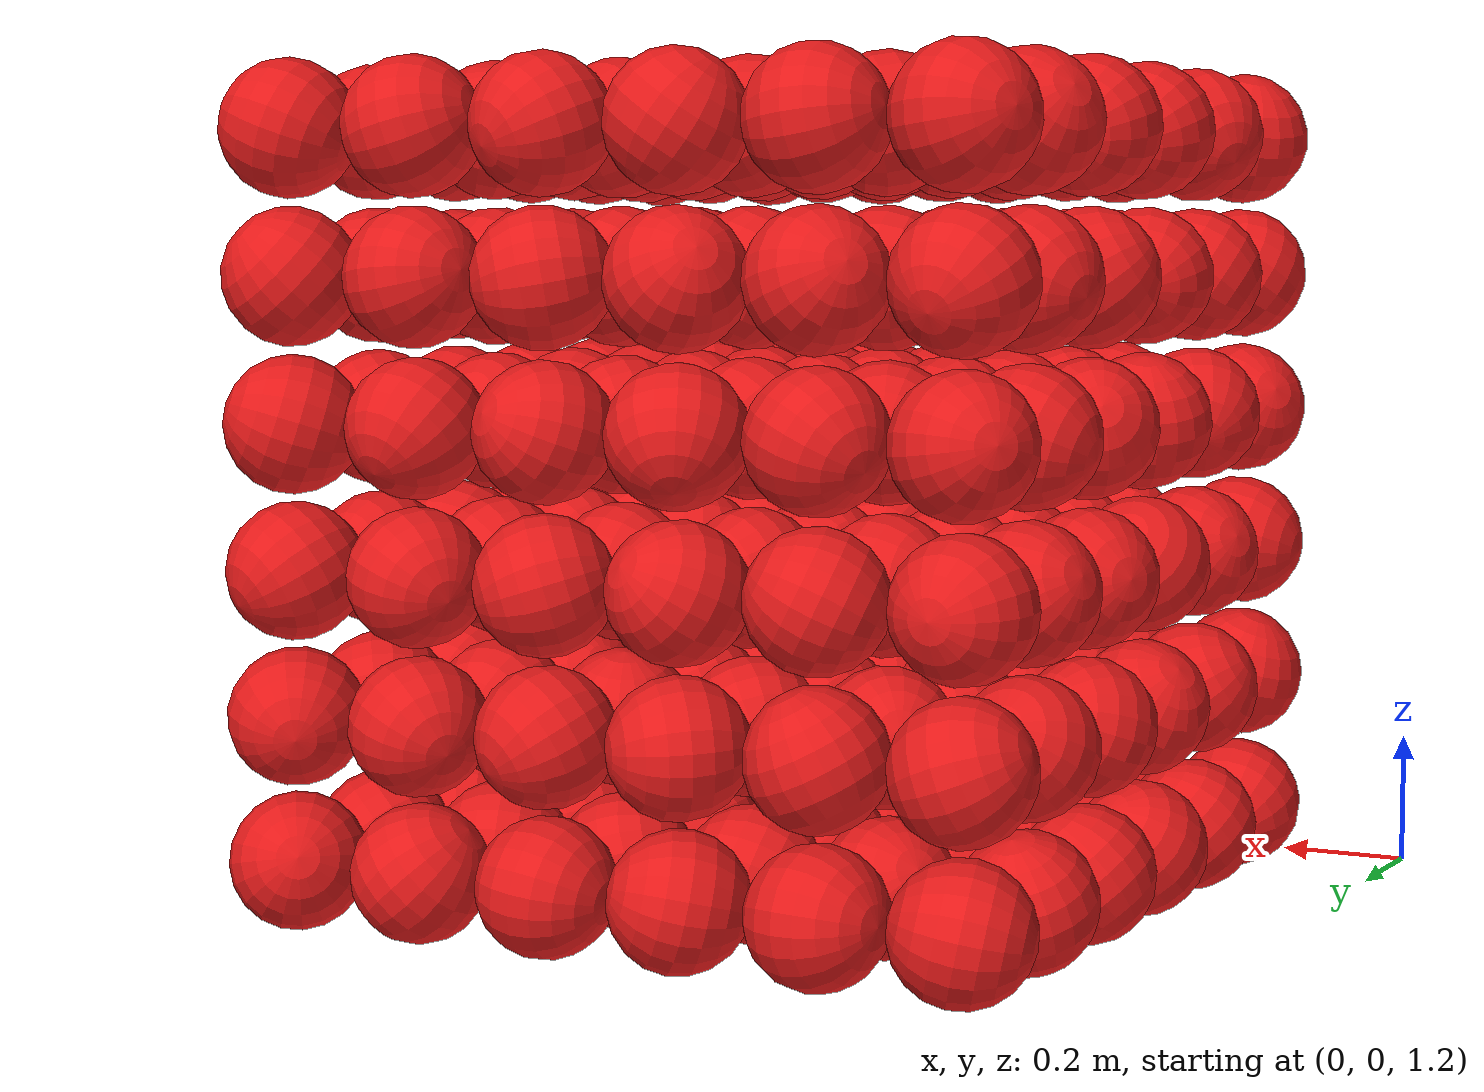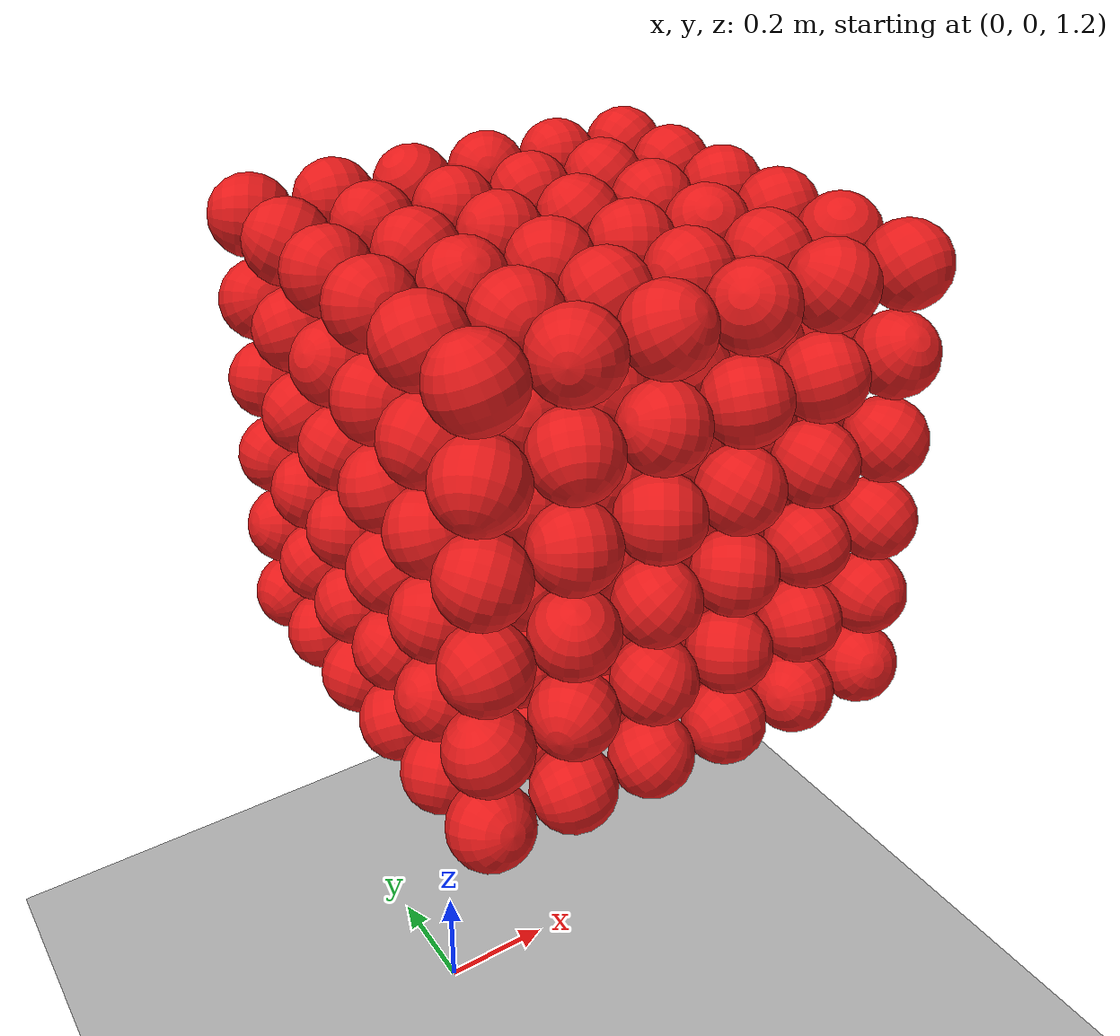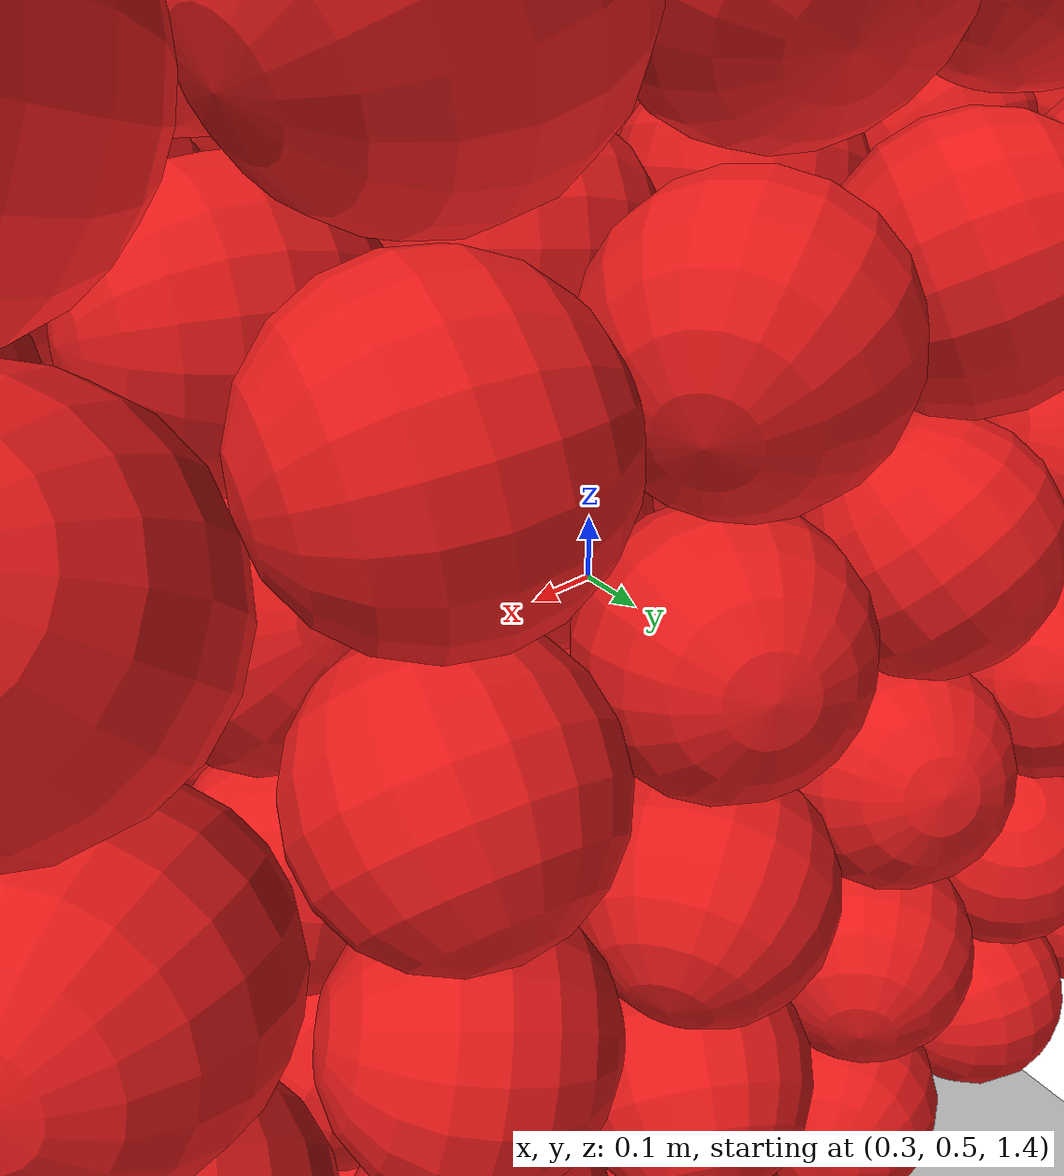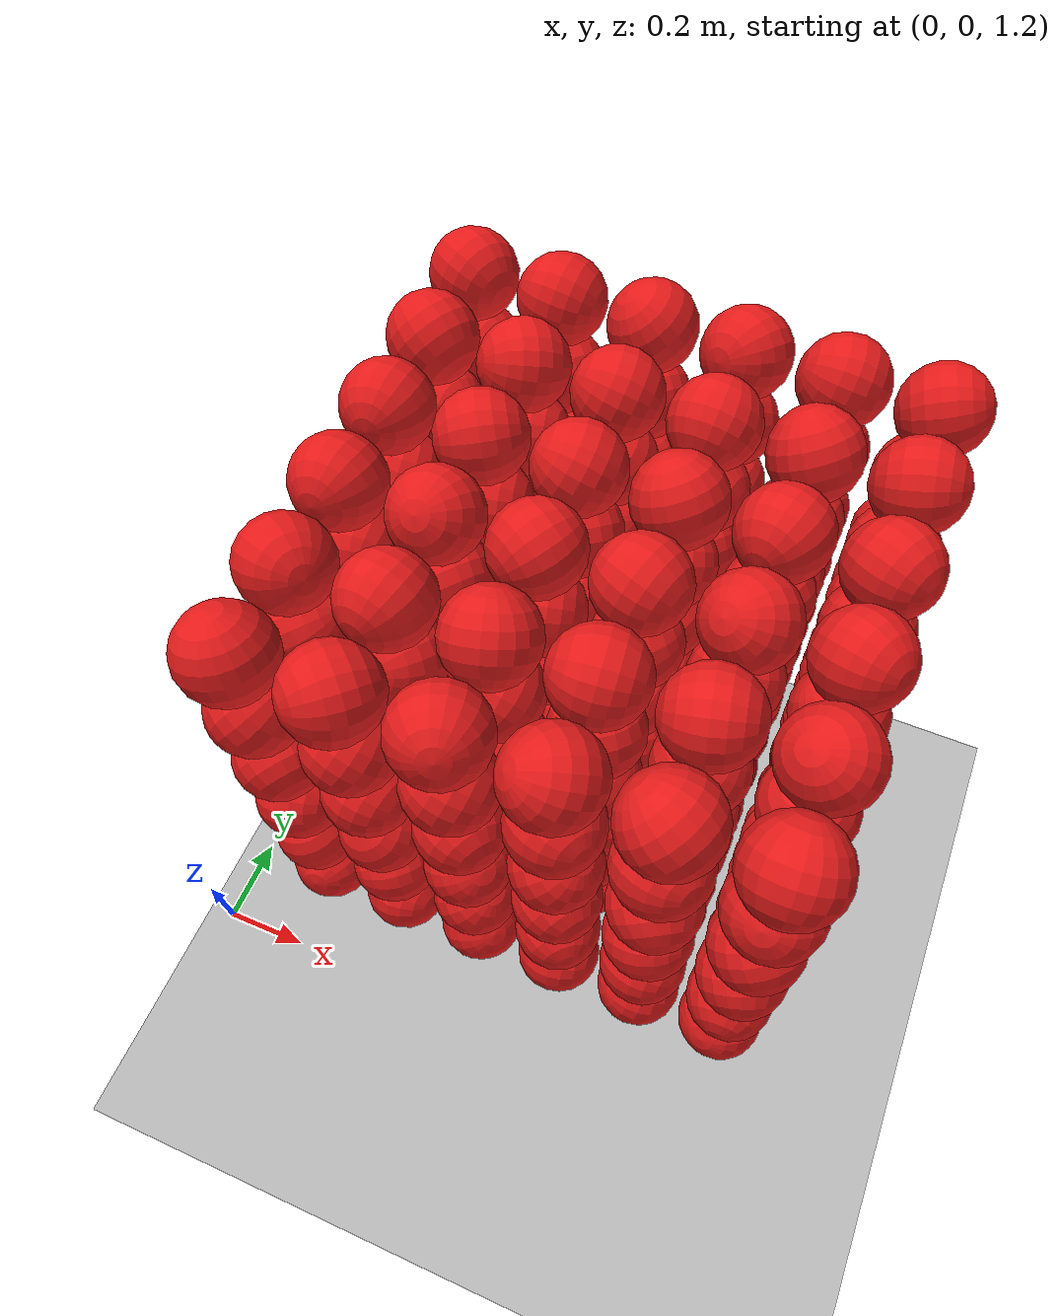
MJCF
<mujoco model="thousand">
    <compiler angle="degree"/>

    <option timestep="0.01" iterations="50" solver="PGS" jacobian="sparse" cone="elliptic" tolerance="1e-10"/>

    <size njmax="5000" nconmax="2000" nstack="1000000000"/>

    <default>
        <geom solimp=".9 .9 .01"/>

        <default class="object5">
			<geom type="sphere" material="geom" rgba=".9 .1 .1 1" size="0.100000"/>
        </default>
    </default>

    <asset>
        <texture type="skybox" builtin="gradient" width="128" height="128" rgb1=".4 .6 .8" rgb2="0 0 0"/>
        <texture name="texgeom" type="cube" builtin="flat" mark="cross" width="128" height="128"
            rgb1="0.6 0.6 0.6" rgb2="0.6 0.6 0.6" markrgb="1 1 1"/>
        <texture name="texplane" type="2d" builtin="checker" rgb1=".4 .4 .4" rgb2=".6 .6 .6"
            width="512" height="512"/>
        <material name='geom' texture="texgeom" texuniform="true"/>
        <material name='MatPlane' reflectance='0.3' texture="texplane" texrepeat="1 1" texuniform="true"/>
    </asset>

    <visual>
        <quality shadowsize="4096" offsamples="8"/>
        <map znear="0.1" force="0.05"/>
    </visual>

    <statistic extent="4"/>

    <worldbody>
        <light directional="true" diffuse=".8 .8 .8" pos="0 0 10" dir="0 0 -10"/>

        <geom pos="0 0 0" type="plane" size="200 200 5" rgba=".7 .7 .7 1" material="MatPlane"/>
		<body pos="0.210297 0.210829 1.311618" quat="0.336752 0.239192 -0.491407 0.766749"><inertial pos="0 0 0" mass="1500.000000" diaginertia="6.000000 6.000000 6.000000"/> <freejoint/> <geom class="object5"/> </body>
		<body pos="0.210005 0.210365 1.521592" quat="0.922671 -0.091206 -0.164606 0.336548"><inertial pos="0 0 0" mass="1500.000000" diaginertia="6.000000 6.000000 6.000000"/> <freejoint/> <geom class="object5"/> </body>
		<body pos="0.210764 0.210380 1.731454" quat="0.344796 0.563833 0.320866 0.678419"><inertial pos="0 0 0" mass="1500.000000" diaginertia="6.000000 6.000000 6.000000"/> <freejoint/> <geom class="object5"/> </body>
		<body pos="0.210034 0.210101 1.941042" quat="-0.583428 0.575731 0.102143 -0.563659"><inertial pos="0 0 0" mass="1500.000000" diaginertia="6.000000 6.000000 6.000000"/> <freejoint/> <geom class="object5"/> </body>
		<body pos="0.210939 0.210542 2.151830" quat="-0.477857 -0.699578 0.528736 0.051785"><inertial pos="0 0 0" mass="1500.000000" diaginertia="6.000000 6.000000 6.000000"/> <freejoint/> <geom class="object5"/> </body>
		<body pos="0.210286 0.210028 2.361153" quat="0.578210 0.038188 -0.169391 -0.797196"><inertial pos="0 0 0" mass="1500.000000" diaginertia="6.000000 6.000000 6.000000"/> <freejoint/> <geom class="object5"/> </body>
		<body pos="0.210631 0.420127 1.311581" quat="-0.684281 -0.011037 -0.356909 -0.635810"><inertial pos="0 0 0" mass="1500.000000" diaginertia="6.000000 6.000000 6.000000"/> <freejoint/> <geom class="object5"/> </body>
		<body pos="0.210105 0.420154 1.521873" quat="0.331598 -0.733652 0.458762 -0.375944"><inertial pos="0 0 0" mass="1500.000000" diaginertia="6.000000 6.000000 6.000000"/> <freejoint/> <geom class="object5"/> </body>
		<body pos="0.210886 0.420839 1.731356" quat="-0.409026 -0.765600 -0.247021 -0.430738"><inertial pos="0 0 0" mass="1500.000000" diaginertia="6.000000 6.000000 6.000000"/> <freejoint/> <geom class="object5"/> </body>
		<body pos="0.210821 0.420280 1.941851" quat="-0.800409 -0.380872 -0.404583 0.224932"><inertial pos="0 0 0" mass="1500.000000" diaginertia="6.000000 6.000000 6.000000"/> <freejoint/> <geom class="object5"/> </body>
		<body pos="0.210456 0.420038 2.151380" quat="0.079176 -0.735335 -0.488427 0.463091"><inertial pos="0 0 0" mass="1500.000000" diaginertia="6.000000 6.000000 6.000000"/> <freejoint/> <geom class="object5"/> </body>
		<body pos="0.210630 0.420809 2.361021" quat="-0.836557 -0.173402 -0.497408 0.150633"><inertial pos="0 0 0" mass="1500.000000" diaginertia="6.000000 6.000000 6.000000"/> <freejoint/> <geom class="object5"/> </body>
		<body pos="0.210823 0.630749 1.311929" quat="0.059900 0.094308 0.408256 0.906005"><inertial pos="0 0 0" mass="1500.000000" diaginertia="6.000000 6.000000 6.000000"/> <freejoint/> <geom class="object5"/> </body>
		<body pos="0.210181 0.630699 1.521189" quat="-0.468960 0.423315 0.046705 -0.773757"><inertial pos="0 0 0" mass="1500.000000" diaginertia="6.000000 6.000000 6.000000"/> <freejoint/> <geom class="object5"/> </body>
		<body pos="0.210955 0.630877 1.731872" quat="-0.011244 0.058530 -0.880240 0.470771"><inertial pos="0 0 0" mass="1500.000000" diaginertia="6.000000 6.000000 6.000000"/> <freejoint/> <geom class="object5"/> </body>
		<body pos="0.210758 0.630584 1.941370" quat="-0.022077 0.075014 -0.141502 -0.986845"><inertial pos="0 0 0" mass="1500.000000" diaginertia="6.000000 6.000000 6.000000"/> <freejoint/> <geom class="object5"/> </body>
		<body pos="0.210653 0.630675 2.151750" quat="-0.412511 0.646901 -0.425177 -0.480186"><inertial pos="0 0 0" mass="1500.000000" diaginertia="6.000000 6.000000 6.000000"/> <freejoint/> <geom class="object5"/> </body>
		<body pos="0.210270 0.630763 2.361319" quat="-0.228592 0.280524 -0.745683 -0.559472"><inertial pos="0 0 0" mass="1500.000000" diaginertia="6.000000 6.000000 6.000000"/> <freejoint/> <geom class="object5"/> </body>
		<body pos="0.210422 0.840213 1.311760" quat="0.302062 0.715909 -0.615910 -0.129951"><inertial pos="0 0 0" mass="1500.000000" diaginertia="6.000000 6.000000 6.000000"/> <freejoint/> <geom class="object5"/> </body>
		<body pos="0.210732 0.840105 1.521445" quat="-0.016145 0.332264 0.736228 -0.589329"><inertial pos="0 0 0" mass="1500.000000" diaginertia="6.000000 6.000000 6.000000"/> <freejoint/> <geom class="object5"/> </body>
		<body pos="0.210053 0.840609 1.731243" quat="0.235144 0.719926 -0.135092 0.638877"><inertial pos="0 0 0" mass="1500.000000" diaginertia="6.000000 6.000000 6.000000"/> <freejoint/> <geom class="object5"/> </body>
		<body pos="0.210808 0.840856 1.941711" quat="-0.521246 -0.449064 -0.691910 0.218872"><inertial pos="0 0 0" mass="1500.000000" diaginertia="6.000000 6.000000 6.000000"/> <freejoint/> <geom class="object5"/> </body>
		<body pos="0.210778 0.840096 2.151410" quat="0.242359 0.489928 0.028819 -0.836900"><inertial pos="0 0 0" mass="1500.000000" diaginertia="6.000000 6.000000 6.000000"/> <freejoint/> <geom class="object5"/> </body>
		<body pos="0.210441 0.840781 2.361991" quat="0.528161 -0.665365 0.403328 0.340092"><inertial pos="0 0 0" mass="1500.000000" diaginertia="6.000000 6.000000 6.000000"/> <freejoint/> <geom class="object5"/> </body>
		<body pos="0.210755 1.050201 1.311324" quat="0.198395 0.975053 -0.099263 -0.007550"><inertial pos="0 0 0" mass="1500.000000" diaginertia="6.000000 6.000000 6.000000"/> <freejoint/> <geom class="object5"/> </body>
		<body pos="0.210972 1.050763 1.521980" quat="-0.432191 -0.681123 -0.497176 0.319528"><inertial pos="0 0 0" mass="1500.000000" diaginertia="6.000000 6.000000 6.000000"/> <freejoint/> <geom class="object5"/> </body>
		<body pos="0.210777 1.050645 1.731338" quat="0.213842 -0.628234 0.508131 -0.548996"><inertial pos="0 0 0" mass="1500.000000" diaginertia="6.000000 6.000000 6.000000"/> <freejoint/> <geom class="object5"/> </body>
		<body pos="0.210947 1.050379 1.941135" quat="-0.308866 0.658079 0.463481 -0.506675"><inertial pos="0 0 0" mass="1500.000000" diaginertia="6.000000 6.000000 6.000000"/> <freejoint/> <geom class="object5"/> </body>
		<body pos="0.210174 1.050893 2.151771" quat="0.549179 -0.538511 -0.576459 0.275869"><inertial pos="0 0 0" mass="1500.000000" diaginertia="6.000000 6.000000 6.000000"/> <freejoint/> <geom class="object5"/> </body>
		<body pos="0.210111 1.050506 2.361685" quat="-0.544811 -0.201144 0.489849 0.650207"><inertial pos="0 0 0" mass="1500.000000" diaginertia="6.000000 6.000000 6.000000"/> <freejoint/> <geom class="object5"/> </body>
		<body pos="0.210161 1.260738 1.311556" quat="-0.714028 0.434658 -0.457920 0.302563"><inertial pos="0 0 0" mass="1500.000000" diaginertia="6.000000 6.000000 6.000000"/> <freejoint/> <geom class="object5"/> </body>
		<body pos="0.210236 1.260489 1.521758" quat="0.333174 -0.699080 0.424640 -0.469003"><inertial pos="0 0 0" mass="1500.000000" diaginertia="6.000000 6.000000 6.000000"/> <freejoint/> <geom class="object5"/> </body>
		<body pos="0.210119 1.260657 1.731947" quat="0.619210 -0.641821 0.340307 0.298054"><inertial pos="0 0 0" mass="1500.000000" diaginertia="6.000000 6.000000 6.000000"/> <freejoint/> <geom class="object5"/> </body>
		<body pos="0.210510 1.260435 1.941384" quat="0.719311 -0.523606 -0.438193 0.128122"><inertial pos="0 0 0" mass="1500.000000" diaginertia="6.000000 6.000000 6.000000"/> <freejoint/> <geom class="object5"/> </body>
		<body pos="0.210627 1.260450 2.151864" quat="0.643573 0.448739 0.311983 -0.535830"><inertial pos="0 0 0" mass="1500.000000" diaginertia="6.000000 6.000000 6.000000"/> <freejoint/> <geom class="object5"/> </body>
		<body pos="0.210083 1.260839 2.361351" quat="0.602693 0.115731 -0.666993 -0.422479"><inertial pos="0 0 0" mass="1500.000000" diaginertia="6.000000 6.000000 6.000000"/> <freejoint/> <geom class="object5"/> </body>
		<body pos="0.420147 0.210416 1.311878" quat="-0.527487 0.557039 0.564805 -0.304074"><inertial pos="0 0 0" mass="1500.000000" diaginertia="6.000000 6.000000 6.000000"/> <freejoint/> <geom class="object5"/> </body>
		<body pos="0.420036 0.210466 1.521584" quat="0.348674 -0.256045 -0.670949 0.602242"><inertial pos="0 0 0" mass="1500.000000" diaginertia="6.000000 6.000000 6.000000"/> <freejoint/> <geom class="object5"/> </body>
		<body pos="0.420829 0.210373 1.731765" quat="-0.232259 0.067793 0.223317 -0.944240"><inertial pos="0 0 0" mass="1500.000000" diaginertia="6.000000 6.000000 6.000000"/> <freejoint/> <geom class="object5"/> </body>
		<body pos="0.420128 0.210610 1.941614" quat="-0.377725 0.509597 -0.548193 0.545086"><inertial pos="0 0 0" mass="1500.000000" diaginertia="6.000000 6.000000 6.000000"/> <freejoint/> <geom class="object5"/> </body>
		<body pos="0.420389 0.210300 2.151753" quat="-0.411347 0.044752 -0.474293 -0.777069"><inertial pos="0 0 0" mass="1500.000000" diaginertia="6.000000 6.000000 6.000000"/> <freejoint/> <geom class="object5"/> </body>
		<body pos="0.420828 0.210116 2.361542" quat="0.158490 -0.635087 -0.427589 -0.623468"><inertial pos="0 0 0" mass="1500.000000" diaginertia="6.000000 6.000000 6.000000"/> <freejoint/> <geom class="object5"/> </body>
		<body pos="0.420753 0.420704 1.311356" quat="0.307899 -0.738986 0.582970 -0.138725"><inertial pos="0 0 0" mass="1500.000000" diaginertia="6.000000 6.000000 6.000000"/> <freejoint/> <geom class="object5"/> </body>
		<body pos="0.420102 0.420098 1.521106" quat="0.262232 -0.660584 -0.169672 0.682697"><inertial pos="0 0 0" mass="1500.000000" diaginertia="6.000000 6.000000 6.000000"/> <freejoint/> <geom class="object5"/> </body>
		<body pos="0.420329 0.420273 1.731819" quat="-0.847746 0.446400 0.219531 0.184007"><inertial pos="0 0 0" mass="1500.000000" diaginertia="6.000000 6.000000 6.000000"/> <freejoint/> <geom class="object5"/> </body>
		<body pos="0.420315 0.420146 1.941130" quat="0.660643 -0.048947 -0.517273 0.541834"><inertial pos="0 0 0" mass="1500.000000" diaginertia="6.000000 6.000000 6.000000"/> <freejoint/> <geom class="object5"/> </body>
		<body pos="0.420682 0.420161 2.151141" quat="0.406341 0.382237 0.346292 -0.754230"><inertial pos="0 0 0" mass="1500.000000" diaginertia="6.000000 6.000000 6.000000"/> <freejoint/> <geom class="object5"/> </body>
		<body pos="0.420822 0.420614 2.361932" quat="0.226321 -0.351641 -0.635580 -0.648973"><inertial pos="0 0 0" mass="1500.000000" diaginertia="6.000000 6.000000 6.000000"/> <freejoint/> <geom class="object5"/> </body>
		<body pos="0.420718 0.630243 1.311146" quat="-0.649767 0.440017 0.485459 -0.385380"><inertial pos="0 0 0" mass="1500.000000" diaginertia="6.000000 6.000000 6.000000"/> <freejoint/> <geom class="object5"/> </body>
		<body pos="0.420748 0.630282 1.521338" quat="-0.271477 -0.688835 -0.672115 -0.008215"><inertial pos="0 0 0" mass="1500.000000" diaginertia="6.000000 6.000000 6.000000"/> <freejoint/> <geom class="object5"/> </body>
		<body pos="0.420376 0.630417 1.731620" quat="0.452601 0.375049 -0.442274 0.677410"><inertial pos="0 0 0" mass="1500.000000" diaginertia="6.000000 6.000000 6.000000"/> <freejoint/> <geom class="object5"/> </body>
		<body pos="0.420696 0.630587 1.941883" quat="0.724973 0.570959 -0.284842 0.259393"><inertial pos="0 0 0" mass="1500.000000" diaginertia="6.000000 6.000000 6.000000"/> <freejoint/> <geom class="object5"/> </body>
		<body pos="0.420906 0.630685 2.151999" quat="-0.001048 -0.392945 0.334652 0.856505"><inertial pos="0 0 0" mass="1500.000000" diaginertia="6.000000 6.000000 6.000000"/> <freejoint/> <geom class="object5"/> </body>
		<body pos="0.420210 0.630416 2.361162" quat="-0.470370 -0.199765 -0.300389 0.805365"><inertial pos="0 0 0" mass="1500.000000" diaginertia="6.000000 6.000000 6.000000"/> <freejoint/> <geom class="object5"/> </body>
		<body pos="0.420453 0.840527 1.311501" quat="0.525075 0.515789 -0.646651 0.200250"><inertial pos="0 0 0" mass="1500.000000" diaginertia="6.000000 6.000000 6.000000"/> <freejoint/> <geom class="object5"/> </body>
		<body pos="0.420773 0.840285 1.521269" quat="-0.228580 -0.868547 -0.140043 -0.416852"><inertial pos="0 0 0" mass="1500.000000" diaginertia="6.000000 6.000000 6.000000"/> <freejoint/> <geom class="object5"/> </body>
		<body pos="0.420255 0.840141 1.731266" quat="-0.268171 -0.438015 -0.853597 -0.087173"><inertial pos="0 0 0" mass="1500.000000" diaginertia="6.000000 6.000000 6.000000"/> <freejoint/> <geom class="object5"/> </body>
		<body pos="0.420905 0.840657 1.941143" quat="-0.441463 0.532426 0.415646 0.590654"><inertial pos="0 0 0" mass="1500.000000" diaginertia="6.000000 6.000000 6.000000"/> <freejoint/> <geom class="object5"/> </body>
		<body pos="0.420936 0.840191 2.151527" quat="-0.577159 -0.241009 -0.684380 -0.374735"><inertial pos="0 0 0" mass="1500.000000" diaginertia="6.000000 6.000000 6.000000"/> <freejoint/> <geom class="object5"/> </body>
		<body pos="0.420164 0.840003 2.361407" quat="-0.481916 -0.705711 0.187311 0.484400"><inertial pos="0 0 0" mass="1500.000000" diaginertia="6.000000 6.000000 6.000000"/> <freejoint/> <geom class="object5"/> </body>
		<body pos="0.420721 1.050509 1.311326" quat="-0.089053 -0.400520 0.360901 0.837499"><inertial pos="0 0 0" mass="1500.000000" diaginertia="6.000000 6.000000 6.000000"/> <freejoint/> <geom class="object5"/> </body>
		<body pos="0.420292 1.050476 1.521392" quat="-0.289742 -0.159689 0.604096 0.724994"><inertial pos="0 0 0" mass="1500.000000" diaginertia="6.000000 6.000000 6.000000"/> <freejoint/> <geom class="object5"/> </body>
		<body pos="0.420004 1.050601 1.731786" quat="0.227096 -0.627944 0.345157 -0.659531"><inertial pos="0 0 0" mass="1500.000000" diaginertia="6.000000 6.000000 6.000000"/> <freejoint/> <geom class="object5"/> </body>
		<body pos="0.420585 1.050848 1.941231" quat="-0.381253 -0.579597 0.410767 -0.591594"><inertial pos="0 0 0" mass="1500.000000" diaginertia="6.000000 6.000000 6.000000"/> <freejoint/> <geom class="object5"/> </body>
		<body pos="0.420367 1.050175 2.151504" quat="-0.008085 0.735006 0.143301 -0.662696"><inertial pos="0 0 0" mass="1500.000000" diaginertia="6.000000 6.000000 6.000000"/> <freejoint/> <geom class="object5"/> </body>
		<body pos="0.420908 1.050664 2.361503" quat="0.593073 -0.390925 0.701492 0.057889"><inertial pos="0 0 0" mass="1500.000000" diaginertia="6.000000 6.000000 6.000000"/> <freejoint/> <geom class="object5"/> </body>
		<body pos="0.420093 1.260484 1.311322" quat="0.064063 0.679138 -0.196997 -0.704173"><inertial pos="0 0 0" mass="1500.000000" diaginertia="6.000000 6.000000 6.000000"/> <freejoint/> <geom class="object5"/> </body>
		<body pos="0.420740 1.260325 1.521665" quat="-0.004814 0.799444 0.555705 -0.228163"><inertial pos="0 0 0" mass="1500.000000" diaginertia="6.000000 6.000000 6.000000"/> <freejoint/> <geom class="object5"/> </body>
		<body pos="0.420514 1.260584 1.731508" quat="0.519661 0.507927 -0.679644 -0.100229"><inertial pos="0 0 0" mass="1500.000000" diaginertia="6.000000 6.000000 6.000000"/> <freejoint/> <geom class="object5"/> </body>
		<body pos="0.420519 1.260149 1.941782" quat="-0.778316 -0.011111 -0.560240 0.283252"><inertial pos="0 0 0" mass="1500.000000" diaginertia="6.000000 6.000000 6.000000"/> <freejoint/> <geom class="object5"/> </body>
		<body pos="0.420457 1.260255 2.151534" quat="-0.693907 0.104555 0.598450 0.386547"><inertial pos="0 0 0" mass="1500.000000" diaginertia="6.000000 6.000000 6.000000"/> <freejoint/> <geom class="object5"/> </body>
		<body pos="0.420539 1.260672 2.361861" quat="0.094339 0.746100 0.103099 0.651003"><inertial pos="0 0 0" mass="1500.000000" diaginertia="6.000000 6.000000 6.000000"/> <freejoint/> <geom class="object5"/> </body>
		<body pos="0.630453 0.210161 1.311237" quat="0.357477 -0.212030 0.342800 -0.842462"><inertial pos="0 0 0" mass="1500.000000" diaginertia="6.000000 6.000000 6.000000"/> <freejoint/> <geom class="object5"/> </body>
		<body pos="0.630934 0.210703 1.521676" quat="-0.202564 0.280912 -0.096641 0.933122"><inertial pos="0 0 0" mass="1500.000000" diaginertia="6.000000 6.000000 6.000000"/> <freejoint/> <geom class="object5"/> </body>
		<body pos="0.630094 0.210468 1.731694" quat="0.889319 0.264715 0.235738 0.288904"><inertial pos="0 0 0" mass="1500.000000" diaginertia="6.000000 6.000000 6.000000"/> <freejoint/> <geom class="object5"/> </body>
		<body pos="0.630152 0.210245 1.941550" quat="-0.602379 0.009463 0.701481 0.380754"><inertial pos="0 0 0" mass="1500.000000" diaginertia="6.000000 6.000000 6.000000"/> <freejoint/> <geom class="object5"/> </body>
		<body pos="0.630037 0.210208 2.151403" quat="0.778306 0.200963 -0.524220 -0.281155"><inertial pos="0 0 0" mass="1500.000000" diaginertia="6.000000 6.000000 6.000000"/> <freejoint/> <geom class="object5"/> </body>
		<body pos="0.630268 0.210385 2.361878" quat="0.211109 -0.671759 0.569874 0.423576"><inertial pos="0 0 0" mass="1500.000000" diaginertia="6.000000 6.000000 6.000000"/> <freejoint/> <geom class="object5"/> </body>
		<body pos="0.630089 0.420367 1.311940" quat="0.695128 -0.393163 -0.387054 0.460879"><inertial pos="0 0 0" mass="1500.000000" diaginertia="6.000000 6.000000 6.000000"/> <freejoint/> <geom class="object5"/> </body>
		<body pos="0.630402 0.420886 1.521452" quat="-0.016862 -0.711308 -0.662328 -0.234686"><inertial pos="0 0 0" mass="1500.000000" diaginertia="6.000000 6.000000 6.000000"/> <freejoint/> <geom class="object5"/> </body>
		<body pos="0.630718 0.420730 1.731336" quat="-0.053861 -0.184497 -0.657840 0.728221"><inertial pos="0 0 0" mass="1500.000000" diaginertia="6.000000 6.000000 6.000000"/> <freejoint/> <geom class="object5"/> </body>
		<body pos="0.630596 0.420450 1.941972" quat="0.765228 -0.048742 -0.578637 -0.277901"><inertial pos="0 0 0" mass="1500.000000" diaginertia="6.000000 6.000000 6.000000"/> <freejoint/> <geom class="object5"/> </body>
		<body pos="0.630206 0.420545 2.151958" quat="-0.465798 0.402118 0.502089 0.607651"><inertial pos="0 0 0" mass="1500.000000" diaginertia="6.000000 6.000000 6.000000"/> <freejoint/> <geom class="object5"/> </body>
		<body pos="0.630631 0.420594 2.361773" quat="-0.384627 -0.833491 -0.392508 0.057380"><inertial pos="0 0 0" mass="1500.000000" diaginertia="6.000000 6.000000 6.000000"/> <freejoint/> <geom class="object5"/> </body>
		<body pos="0.630225 0.630912 1.311113" quat="-0.530815 -0.045899 0.365604 0.763192"><inertial pos="0 0 0" mass="1500.000000" diaginertia="6.000000 6.000000 6.000000"/> <freejoint/> <geom class="object5"/> </body>
		<body pos="0.630635 0.630807 1.521572" quat="-0.015184 0.552356 -0.107990 -0.826445"><inertial pos="0 0 0" mass="1500.000000" diaginertia="6.000000 6.000000 6.000000"/> <freejoint/> <geom class="object5"/> </body>
		<body pos="0.630987 0.630749 1.731579" quat="-0.295404 0.166291 0.715462 0.610899"><inertial pos="0 0 0" mass="1500.000000" diaginertia="6.000000 6.000000 6.000000"/> <freejoint/> <geom class="object5"/> </body>
		<body pos="0.630868 0.630104 1.941787" quat="-0.167665 -0.344165 -0.844182 0.375228"><inertial pos="0 0 0" mass="1500.000000" diaginertia="6.000000 6.000000 6.000000"/> <freejoint/> <geom class="object5"/> </body>
		<body pos="0.630844 0.630050 2.151246" quat="0.586888 -0.508354 0.597081 -0.201577"><inertial pos="0 0 0" mass="1500.000000" diaginertia="6.000000 6.000000 6.000000"/> <freejoint/> <geom class="object5"/> </body>
		<body pos="0.630880 0.630276 2.361714" quat="-0.642207 -0.560145 0.512002 -0.107995"><inertial pos="0 0 0" mass="1500.000000" diaginertia="6.000000 6.000000 6.000000"/> <freejoint/> <geom class="object5"/> </body>
		<body pos="0.630563 0.840733 1.311961" quat="-0.585462 -0.505210 -0.490292 0.402008"><inertial pos="0 0 0" mass="1500.000000" diaginertia="6.000000 6.000000 6.000000"/> <freejoint/> <geom class="object5"/> </body>
		<body pos="0.630160 0.840526 1.521709" quat="0.897266 0.202061 -0.381337 0.093094"><inertial pos="0 0 0" mass="1500.000000" diaginertia="6.000000 6.000000 6.000000"/> <freejoint/> <geom class="object5"/> </body>
		<body pos="0.630541 0.840901 1.731071" quat="0.613943 0.514878 0.557138 0.218113"><inertial pos="0 0 0" mass="1500.000000" diaginertia="6.000000 6.000000 6.000000"/> <freejoint/> <geom class="object5"/> </body>
		<body pos="0.630727 0.840093 1.941135" quat="0.468930 0.521235 -0.599333 0.386288"><inertial pos="0 0 0" mass="1500.000000" diaginertia="6.000000 6.000000 6.000000"/> <freejoint/> <geom class="object5"/> </body>
		<body pos="0.630321 0.840238 2.151840" quat="-0.142185 0.289523 -0.840235 0.435850"><inertial pos="0 0 0" mass="1500.000000" diaginertia="6.000000 6.000000 6.000000"/> <freejoint/> <geom class="object5"/> </body>
		<body pos="0.630998 0.840384 2.361529" quat="0.453873 -0.539540 0.641155 -0.303012"><inertial pos="0 0 0" mass="1500.000000" diaginertia="6.000000 6.000000 6.000000"/> <freejoint/> <geom class="object5"/> </body>
		<body pos="0.630679 1.050459 1.311664" quat="0.394908 -0.556355 0.094420 -0.724984"><inertial pos="0 0 0" mass="1500.000000" diaginertia="6.000000 6.000000 6.000000"/> <freejoint/> <geom class="object5"/> </body>
		<body pos="0.630907 1.050573 1.521845" quat="0.704250 0.438756 0.080128 0.552363"><inertial pos="0 0 0" mass="1500.000000" diaginertia="6.000000 6.000000 6.000000"/> <freejoint/> <geom class="object5"/> </body>
		<body pos="0.630268 1.050941 1.731990" quat="0.658267 -0.729914 0.135606 -0.124586"><inertial pos="0 0 0" mass="1500.000000" diaginertia="6.000000 6.000000 6.000000"/> <freejoint/> <geom class="object5"/> </body>
		<body pos="0.630046 1.050925 1.941751" quat="-0.619229 0.312901 -0.300976 0.654264"><inertial pos="0 0 0" mass="1500.000000" diaginertia="6.000000 6.000000 6.000000"/> <freejoint/> <geom class="object5"/> </body>
		<body pos="0.630149 1.050597 2.151465" quat="-0.184810 0.793089 -0.573442 0.089550"><inertial pos="0 0 0" mass="1500.000000" diaginertia="6.000000 6.000000 6.000000"/> <freejoint/> <geom class="object5"/> </body>
		<body pos="0.630948 1.050653 2.361034" quat="-0.233998 0.787232 -0.235142 0.519826"><inertial pos="0 0 0" mass="1500.000000" diaginertia="6.000000 6.000000 6.000000"/> <freejoint/> <geom class="object5"/> </body>
		<body pos="0.630741 1.260230 1.311924" quat="-0.601123 0.605327 -0.163415 0.495506"><inertial pos="0 0 0" mass="1500.000000" diaginertia="6.000000 6.000000 6.000000"/> <freejoint/> <geom class="object5"/> </body>
		<body pos="0.630340 1.260891 1.521855" quat="-0.672520 0.333186 -0.640224 -0.163759"><inertial pos="0 0 0" mass="1500.000000" diaginertia="6.000000 6.000000 6.000000"/> <freejoint/> <geom class="object5"/> </body>
		<body pos="0.630550 1.260552 1.731773" quat="0.496296 0.840405 -0.074799 -0.204490"><inertial pos="0 0 0" mass="1500.000000" diaginertia="6.000000 6.000000 6.000000"/> <freejoint/> <geom class="object5"/> </body>
		<body pos="0.630944 1.260096 1.941559" quat="-0.367740 0.895704 0.239452 -0.071722"><inertial pos="0 0 0" mass="1500.000000" diaginertia="6.000000 6.000000 6.000000"/> <freejoint/> <geom class="object5"/> </body>
		<body pos="0.630879 1.260733 2.151589" quat="-0.532282 -0.637266 -0.554071 -0.059775"><inertial pos="0 0 0" mass="1500.000000" diaginertia="6.000000 6.000000 6.000000"/> <freejoint/> <geom class="object5"/> </body>
		<body pos="0.630188 1.260075 2.361329" quat="-0.479885 -0.286525 0.092290 0.824073"><inertial pos="0 0 0" mass="1500.000000" diaginertia="6.000000 6.000000 6.000000"/> <freejoint/> <geom class="object5"/> </body>
		<body pos="0.840227 0.210400 1.311991" quat="-0.055146 0.703503 -0.002265 0.708546"><inertial pos="0 0 0" mass="1500.000000" diaginertia="6.000000 6.000000 6.000000"/> <freejoint/> <geom class="object5"/> </body>
		<body pos="0.840538 0.210133 1.521339" quat="0.351449 -0.129458 0.651801 -0.659454"><inertial pos="0 0 0" mass="1500.000000" diaginertia="6.000000 6.000000 6.000000"/> <freejoint/> <geom class="object5"/> </body>
		<body pos="0.840379 0.210565 1.731757" quat="0.408818 -0.207772 0.707981 -0.537086"><inertial pos="0 0 0" mass="1500.000000" diaginertia="6.000000 6.000000 6.000000"/> <freejoint/> <geom class="object5"/> </body>
		<body pos="0.840890 0.210258 1.941414" quat="-0.916011 0.084528 -0.285825 0.268481"><inertial pos="0 0 0" mass="1500.000000" diaginertia="6.000000 6.000000 6.000000"/> <freejoint/> <geom class="object5"/> </body>
		<body pos="0.840932 0.210588 2.151261" quat="0.557819 -0.673314 -0.379478 0.302460"><inertial pos="0 0 0" mass="1500.000000" diaginertia="6.000000 6.000000 6.000000"/> <freejoint/> <geom class="object5"/> </body>
		<body pos="0.840100 0.210717 2.361240" quat="-0.190438 -0.460052 -0.761178 -0.415564"><inertial pos="0 0 0" mass="1500.000000" diaginertia="6.000000 6.000000 6.000000"/> <freejoint/> <geom class="object5"/> </body>
		<body pos="0.840633 0.420023 1.311624" quat="-0.686606 -0.235754 -0.078252 0.683277"><inertial pos="0 0 0" mass="1500.000000" diaginertia="6.000000 6.000000 6.000000"/> <freejoint/> <geom class="object5"/> </body>
		<body pos="0.840221 0.420382 1.521907" quat="-0.576848 -0.697730 0.290789 -0.309615"><inertial pos="0 0 0" mass="1500.000000" diaginertia="6.000000 6.000000 6.000000"/> <freejoint/> <geom class="object5"/> </body>
		<body pos="0.840997 0.420184 1.731555" quat="0.252918 -0.002668 -0.103718 -0.961909"><inertial pos="0 0 0" mass="1500.000000" diaginertia="6.000000 6.000000 6.000000"/> <freejoint/> <geom class="object5"/> </body>
		<body pos="0.840259 0.420722 1.941996" quat="0.108175 0.281005 0.353620 0.885600"><inertial pos="0 0 0" mass="1500.000000" diaginertia="6.000000 6.000000 6.000000"/> <freejoint/> <geom class="object5"/> </body>
		<body pos="0.840366 0.420469 2.151129" quat="-0.735727 0.077055 0.301696 0.601455"><inertial pos="0 0 0" mass="1500.000000" diaginertia="6.000000 6.000000 6.000000"/> <freejoint/> <geom class="object5"/> </body>
		<body pos="0.840598 0.420062 2.361738" quat="-0.422710 -0.506270 -0.550321 -0.512010"><inertial pos="0 0 0" mass="1500.000000" diaginertia="6.000000 6.000000 6.000000"/> <freejoint/> <geom class="object5"/> </body>
		<body pos="0.840213 0.630389 1.311288" quat="-0.596522 0.227883 -0.657863 0.399309"><inertial pos="0 0 0" mass="1500.000000" diaginertia="6.000000 6.000000 6.000000"/> <freejoint/> <geom class="object5"/> </body>
		<body pos="0.840890 0.630443 1.521408" quat="-0.159928 0.703048 0.050526 -0.691082"><inertial pos="0 0 0" mass="1500.000000" diaginertia="6.000000 6.000000 6.000000"/> <freejoint/> <geom class="object5"/> </body>
		<body pos="0.840212 0.630168 1.731355" quat="-0.301962 0.115211 -0.821910 0.469052"><inertial pos="0 0 0" mass="1500.000000" diaginertia="6.000000 6.000000 6.000000"/> <freejoint/> <geom class="object5"/> </body>
		<body pos="0.840355 0.630647 1.941425" quat="0.435008 -0.434502 -0.526664 -0.587027"><inertial pos="0 0 0" mass="1500.000000" diaginertia="6.000000 6.000000 6.000000"/> <freejoint/> <geom class="object5"/> </body>
		<body pos="0.840991 0.630975 2.151922" quat="-0.119556 -0.732105 -0.305494 0.596995"><inertial pos="0 0 0" mass="1500.000000" diaginertia="6.000000 6.000000 6.000000"/> <freejoint/> <geom class="object5"/> </body>
		<body pos="0.840901 0.630860 2.361973" quat="-0.540345 -0.584298 -0.474760 -0.375799"><inertial pos="0 0 0" mass="1500.000000" diaginertia="6.000000 6.000000 6.000000"/> <freejoint/> <geom class="object5"/> </body>
		<body pos="0.840728 0.840223 1.311597" quat="-0.638919 0.147464 -0.080410 0.750714"><inertial pos="0 0 0" mass="1500.000000" diaginertia="6.000000 6.000000 6.000000"/> <freejoint/> <geom class="object5"/> </body>
		<body pos="0.840007 0.840367 1.521163" quat="-0.718449 0.680199 -0.122268 0.078807"><inertial pos="0 0 0" mass="1500.000000" diaginertia="6.000000 6.000000 6.000000"/> <freejoint/> <geom class="object5"/> </body>
		<body pos="0.840087 0.840589 1.731408" quat="0.171660 -0.700883 -0.689262 -0.064923"><inertial pos="0 0 0" mass="1500.000000" diaginertia="6.000000 6.000000 6.000000"/> <freejoint/> <geom class="object5"/> </body>
		<body pos="0.840820 0.840699 1.941550" quat="-0.495752 0.228731 -0.753671 0.365913"><inertial pos="0 0 0" mass="1500.000000" diaginertia="6.000000 6.000000 6.000000"/> <freejoint/> <geom class="object5"/> </body>
		<body pos="0.840424 0.840516 2.151911" quat="0.424448 0.785658 0.437611 -0.105268"><inertial pos="0 0 0" mass="1500.000000" diaginertia="6.000000 6.000000 6.000000"/> <freejoint/> <geom class="object5"/> </body>
		<body pos="0.840455 0.840512 2.361234" quat="-0.161182 -0.950797 0.062503 -0.257099"><inertial pos="0 0 0" mass="1500.000000" diaginertia="6.000000 6.000000 6.000000"/> <freejoint/> <geom class="object5"/> </body>
		<body pos="0.840055 1.050364 1.311099" quat="0.312500 -0.786015 0.229231 -0.481641"><inertial pos="0 0 0" mass="1500.000000" diaginertia="6.000000 6.000000 6.000000"/> <freejoint/> <geom class="object5"/> </body>
		<body pos="0.840746 1.050782 1.521119" quat="-0.127903 -0.657307 -0.742257 0.025346"><inertial pos="0 0 0" mass="1500.000000" diaginertia="6.000000 6.000000 6.000000"/> <freejoint/> <geom class="object5"/> </body>
		<body pos="0.840185 1.050725 1.731039" quat="-0.499037 0.535734 0.506959 -0.454912"><inertial pos="0 0 0" mass="1500.000000" diaginertia="6.000000 6.000000 6.000000"/> <freejoint/> <geom class="object5"/> </body>
		<body pos="0.840488 1.050535 1.941196" quat="0.613537 -0.321779 0.668140 0.271328"><inertial pos="0 0 0" mass="1500.000000" diaginertia="6.000000 6.000000 6.000000"/> <freejoint/> <geom class="object5"/> </body>
		<body pos="0.840618 1.050549 2.151778" quat="-0.421866 -0.606256 -0.231754 -0.633066"><inertial pos="0 0 0" mass="1500.000000" diaginertia="6.000000 6.000000 6.000000"/> <freejoint/> <geom class="object5"/> </body>
		<body pos="0.840381 1.050978 2.361614" quat="0.539552 -0.357374 -0.385363 -0.657772"><inertial pos="0 0 0" mass="1500.000000" diaginertia="6.000000 6.000000 6.000000"/> <freejoint/> <geom class="object5"/> </body>
		<body pos="0.840899 1.260416 1.311680" quat="-0.587274 -0.407419 -0.513931 -0.474335"><inertial pos="0 0 0" mass="1500.000000" diaginertia="6.000000 6.000000 6.000000"/> <freejoint/> <geom class="object5"/> </body>
		<body pos="0.840189 1.260465 1.521172" quat="0.043592 0.362939 0.763784 0.531986"><inertial pos="0 0 0" mass="1500.000000" diaginertia="6.000000 6.000000 6.000000"/> <freejoint/> <geom class="object5"/> </body>
		<body pos="0.840984 1.260220 1.731173" quat="0.607281 0.573103 -0.176415 -0.521192"><inertial pos="0 0 0" mass="1500.000000" diaginertia="6.000000 6.000000 6.000000"/> <freejoint/> <geom class="object5"/> </body>
		<body pos="0.840142 1.260007 1.941808" quat="0.590667 0.754608 -0.274701 -0.078856"><inertial pos="0 0 0" mass="1500.000000" diaginertia="6.000000 6.000000 6.000000"/> <freejoint/> <geom class="object5"/> </body>
		<body pos="0.840646 1.260674 2.151976" quat="0.143174 0.540256 0.540789 0.628627"><inertial pos="0 0 0" mass="1500.000000" diaginertia="6.000000 6.000000 6.000000"/> <freejoint/> <geom class="object5"/> </body>
		<body pos="0.840268 1.260946 2.361112" quat="0.541800 -0.571858 0.583295 0.197986"><inertial pos="0 0 0" mass="1500.000000" diaginertia="6.000000 6.000000 6.000000"/> <freejoint/> <geom class="object5"/> </body>
		<body pos="1.050601 0.210468 1.311514" quat="0.124244 0.527930 0.174905 -0.821743"><inertial pos="0 0 0" mass="1500.000000" diaginertia="6.000000 6.000000 6.000000"/> <freejoint/> <geom class="object5"/> </body>
		<body pos="1.050375 0.210631 1.521515" quat="-0.592162 0.526137 0.541501 -0.281603"><inertial pos="0 0 0" mass="1500.000000" diaginertia="6.000000 6.000000 6.000000"/> <freejoint/> <geom class="object5"/> </body>
		<body pos="1.050158 0.210857 1.731317" quat="-0.400856 0.627489 0.524151 -0.413325"><inertial pos="0 0 0" mass="1500.000000" diaginertia="6.000000 6.000000 6.000000"/> <freejoint/> <geom class="object5"/> </body>
		<body pos="1.050899 0.210126 1.941857" quat="0.500793 -0.071138 -0.573560 -0.644341"><inertial pos="0 0 0" mass="1500.000000" diaginertia="6.000000 6.000000 6.000000"/> <freejoint/> <geom class="object5"/> </body>
		<body pos="1.050174 0.210727 2.151487" quat="0.011089 0.672479 -0.455639 -0.583132"><inertial pos="0 0 0" mass="1500.000000" diaginertia="6.000000 6.000000 6.000000"/> <freejoint/> <geom class="object5"/> </body>
		<body pos="1.050442 0.210222 2.361236" quat="-0.408411 -0.658035 -0.588462 -0.232171"><inertial pos="0 0 0" mass="1500.000000" diaginertia="6.000000 6.000000 6.000000"/> <freejoint/> <geom class="object5"/> </body>
		<body pos="1.050987 0.420859 1.311734" quat="0.146789 -0.427026 -0.421148 -0.786598"><inertial pos="0 0 0" mass="1500.000000" diaginertia="6.000000 6.000000 6.000000"/> <freejoint/> <geom class="object5"/> </body>
		<body pos="1.050816 0.420713 1.521775" quat="-0.388232 0.567039 0.016375 -0.726275"><inertial pos="0 0 0" mass="1500.000000" diaginertia="6.000000 6.000000 6.000000"/> <freejoint/> <geom class="object5"/> </body>
		<body pos="1.050876 0.420205 1.731292" quat="-0.353904 0.635271 -0.573628 0.377006"><inertial pos="0 0 0" mass="1500.000000" diaginertia="6.000000 6.000000 6.000000"/> <freejoint/> <geom class="object5"/> </body>
		<body pos="1.050806 0.420742 1.941792" quat="0.359588 0.506060 -0.245058 0.744678"><inertial pos="0 0 0" mass="1500.000000" diaginertia="6.000000 6.000000 6.000000"/> <freejoint/> <geom class="object5"/> </body>
		<body pos="1.050553 0.420856 2.151958" quat="0.915992 -0.246304 0.309031 0.069236"><inertial pos="0 0 0" mass="1500.000000" diaginertia="6.000000 6.000000 6.000000"/> <freejoint/> <geom class="object5"/> </body>
		<body pos="1.050608 0.420176 2.361518" quat="-0.006617 0.721715 0.151772 -0.675314"><inertial pos="0 0 0" mass="1500.000000" diaginertia="6.000000 6.000000 6.000000"/> <freejoint/> <geom class="object5"/> </body>
		<body pos="1.050130 0.630657 1.311213" quat="-0.150958 0.678124 0.457754 -0.554816"><inertial pos="0 0 0" mass="1500.000000" diaginertia="6.000000 6.000000 6.000000"/> <freejoint/> <geom class="object5"/> </body>
		<body pos="1.050773 0.630355 1.521090" quat="0.395509 0.376949 -0.729344 0.411752"><inertial pos="0 0 0" mass="1500.000000" diaginertia="6.000000 6.000000 6.000000"/> <freejoint/> <geom class="object5"/> </body>
		<body pos="1.050084 0.630892 1.731888" quat="0.116896 0.585064 -0.629457 -0.497814"><inertial pos="0 0 0" mass="1500.000000" diaginertia="6.000000 6.000000 6.000000"/> <freejoint/> <geom class="object5"/> </body>
		<body pos="1.050049 0.630692 1.941293" quat="0.477423 0.066916 -0.331466 0.810999"><inertial pos="0 0 0" mass="1500.000000" diaginertia="6.000000 6.000000 6.000000"/> <freejoint/> <geom class="object5"/> </body>
		<body pos="1.050828 0.630523 2.151123" quat="-0.593613 0.251856 0.306418 0.700214"><inertial pos="0 0 0" mass="1500.000000" diaginertia="6.000000 6.000000 6.000000"/> <freejoint/> <geom class="object5"/> </body>
		<body pos="1.050962 0.630402 2.361187" quat="-0.256512 0.892829 0.220750 0.297199"><inertial pos="0 0 0" mass="1500.000000" diaginertia="6.000000 6.000000 6.000000"/> <freejoint/> <geom class="object5"/> </body>
		<body pos="1.050961 0.840240 1.311318" quat="-0.289970 0.566947 0.418480 0.647582"><inertial pos="0 0 0" mass="1500.000000" diaginertia="6.000000 6.000000 6.000000"/> <freejoint/> <geom class="object5"/> </body>
		<body pos="1.050173 0.840805 1.521364" quat="0.174438 -0.596498 0.616488 -0.483429"><inertial pos="0 0 0" mass="1500.000000" diaginertia="6.000000 6.000000 6.000000"/> <freejoint/> <geom class="object5"/> </body>
		<body pos="1.050677 0.840834 1.731043" quat="0.652636 -0.517144 -0.510583 0.214322"><inertial pos="0 0 0" mass="1500.000000" diaginertia="6.000000 6.000000 6.000000"/> <freejoint/> <geom class="object5"/> </body>
		<body pos="1.050330 0.840978 1.941663" quat="0.515746 -0.441530 -0.491325 0.545579"><inertial pos="0 0 0" mass="1500.000000" diaginertia="6.000000 6.000000 6.000000"/> <freejoint/> <geom class="object5"/> </body>
		<body pos="1.050735 0.840023 2.151108" quat="-0.563423 -0.313072 0.520556 -0.559965"><inertial pos="0 0 0" mass="1500.000000" diaginertia="6.000000 6.000000 6.000000"/> <freejoint/> <geom class="object5"/> </body>
		<body pos="1.050574 0.840922 2.361978" quat="0.632668 -0.702954 -0.136958 -0.294668"><inertial pos="0 0 0" mass="1500.000000" diaginertia="6.000000 6.000000 6.000000"/> <freejoint/> <geom class="object5"/> </body>
		<body pos="1.050423 1.050915 1.311285" quat="0.134985 0.552083 0.393748 0.722458"><inertial pos="0 0 0" mass="1500.000000" diaginertia="6.000000 6.000000 6.000000"/> <freejoint/> <geom class="object5"/> </body>
		<body pos="1.050055 1.050860 1.521008" quat="0.377089 0.364994 -0.561529 0.639741"><inertial pos="0 0 0" mass="1500.000000" diaginertia="6.000000 6.000000 6.000000"/> <freejoint/> <geom class="object5"/> </body>
		<body pos="1.050157 1.050912 1.731234" quat="0.400648 0.301249 -0.737315 -0.452877"><inertial pos="0 0 0" mass="1500.000000" diaginertia="6.000000 6.000000 6.000000"/> <freejoint/> <geom class="object5"/> </body>
		<body pos="1.050199 1.050932 1.941541" quat="0.726922 -0.453819 0.232956 0.459743"><inertial pos="0 0 0" mass="1500.000000" diaginertia="6.000000 6.000000 6.000000"/> <freejoint/> <geom class="object5"/> </body>
		<body pos="1.050400 1.050837 2.151163" quat="-0.664894 -0.349652 -0.562216 -0.345793"><inertial pos="0 0 0" mass="1500.000000" diaginertia="6.000000 6.000000 6.000000"/> <freejoint/> <geom class="object5"/> </body>
		<body pos="1.050986 1.050624 2.361596" quat="0.251555 -0.315586 0.147910 0.902911"><inertial pos="0 0 0" mass="1500.000000" diaginertia="6.000000 6.000000 6.000000"/> <freejoint/> <geom class="object5"/> </body>
		<body pos="1.050470 1.260088 1.311934" quat="-0.680228 0.221619 0.347301 -0.606265"><inertial pos="0 0 0" mass="1500.000000" diaginertia="6.000000 6.000000 6.000000"/> <freejoint/> <geom class="object5"/> </body>
		<body pos="1.050786 1.260925 1.521564" quat="-0.074498 0.477959 -0.352069 0.801281"><inertial pos="0 0 0" mass="1500.000000" diaginertia="6.000000 6.000000 6.000000"/> <freejoint/> <geom class="object5"/> </body>
		<body pos="1.050986 1.260536 1.731894" quat="-0.515348 -0.041886 0.794253 0.319100"><inertial pos="0 0 0" mass="1500.000000" diaginertia="6.000000 6.000000 6.000000"/> <freejoint/> <geom class="object5"/> </body>
		<body pos="1.050436 1.260854 1.941396" quat="-0.075706 -0.120572 -0.424443 0.894192"><inertial pos="0 0 0" mass="1500.000000" diaginertia="6.000000 6.000000 6.000000"/> <freejoint/> <geom class="object5"/> </body>
		<body pos="1.050883 1.260343 2.151954" quat="-0.258479 0.586199 -0.459302 0.615305"><inertial pos="0 0 0" mass="1500.000000" diaginertia="6.000000 6.000000 6.000000"/> <freejoint/> <geom class="object5"/> </body>
		<body pos="1.050879 1.260507 2.361018" quat="0.588907 -0.297556 0.737946 -0.141721"><inertial pos="0 0 0" mass="1500.000000" diaginertia="6.000000 6.000000 6.000000"/> <freejoint/> <geom class="object5"/> </body>
		<body pos="1.260606 0.210378 1.311721" quat="-0.279043 0.682101 0.530903 0.418349"><inertial pos="0 0 0" mass="1500.000000" diaginertia="6.000000 6.000000 6.000000"/> <freejoint/> <geom class="object5"/> </body>
		<body pos="1.260300 0.210873 1.521375" quat="0.371470 0.394334 0.621167 -0.566270"><inertial pos="0 0 0" mass="1500.000000" diaginertia="6.000000 6.000000 6.000000"/> <freejoint/> <geom class="object5"/> </body>
		<body pos="1.260237 0.210431 1.731847" quat="-0.173481 -0.576200 0.634354 -0.485276"><inertial pos="0 0 0" mass="1500.000000" diaginertia="6.000000 6.000000 6.000000"/> <freejoint/> <geom class="object5"/> </body>
		<body pos="1.260591 0.210812 1.941261" quat="0.754717 -0.091259 -0.426815 -0.489799"><inertial pos="0 0 0" mass="1500.000000" diaginertia="6.000000 6.000000 6.000000"/> <freejoint/> <geom class="object5"/> </body>
		<body pos="1.260698 0.210875 2.151769" quat="-0.329288 0.670413 -0.629156 -0.215123"><inertial pos="0 0 0" mass="1500.000000" diaginertia="6.000000 6.000000 6.000000"/> <freejoint/> <geom class="object5"/> </body>
		<body pos="1.260673 0.210057 2.361055" quat="0.193602 0.450527 -0.784889 0.378805"><inertial pos="0 0 0" mass="1500.000000" diaginertia="6.000000 6.000000 6.000000"/> <freejoint/> <geom class="object5"/> </body>
		<body pos="1.260530 0.420514 1.311702" quat="-0.262332 0.236836 -0.400246 -0.845514"><inertial pos="0 0 0" mass="1500.000000" diaginertia="6.000000 6.000000 6.000000"/> <freejoint/> <geom class="object5"/> </body>
		<body pos="1.260663 0.420029 1.521385" quat="-0.715239 -0.347771 -0.479402 0.371029"><inertial pos="0 0 0" mass="1500.000000" diaginertia="6.000000 6.000000 6.000000"/> <freejoint/> <geom class="object5"/> </body>
		<body pos="1.260705 0.420715 1.731361" quat="0.099105 -0.303198 0.940418 -0.117742"><inertial pos="0 0 0" mass="1500.000000" diaginertia="6.000000 6.000000 6.000000"/> <freejoint/> <geom class="object5"/> </body>
		<body pos="1.260111 0.420865 1.941036" quat="-0.499413 -0.653352 -0.356284 -0.443599"><inertial pos="0 0 0" mass="1500.000000" diaginertia="6.000000 6.000000 6.000000"/> <freejoint/> <geom class="object5"/> </body>
		<body pos="1.260731 0.420638 2.151975" quat="-0.374753 -0.175951 -0.043427 0.909239"><inertial pos="0 0 0" mass="1500.000000" diaginertia="6.000000 6.000000 6.000000"/> <freejoint/> <geom class="object5"/> </body>
		<body pos="1.260572 0.420425 2.361454" quat="0.949905 0.174622 -0.228556 0.122268"><inertial pos="0 0 0" mass="1500.000000" diaginertia="6.000000 6.000000 6.000000"/> <freejoint/> <geom class="object5"/> </body>
		<body pos="1.260987 0.630784 1.311088" quat="-0.272138 0.603630 -0.673260 -0.329077"><inertial pos="0 0 0" mass="1500.000000" diaginertia="6.000000 6.000000 6.000000"/> <freejoint/> <geom class="object5"/> </body>
		<body pos="1.260218 0.630003 1.521192" quat="-0.119068 0.435074 -0.076409 -0.889210"><inertial pos="0 0 0" mass="1500.000000" diaginertia="6.000000 6.000000 6.000000"/> <freejoint/> <geom class="object5"/> </body>
		<body pos="1.260804 0.630076 1.731123" quat="0.860866 0.430226 0.027626 0.270282"><inertial pos="0 0 0" mass="1500.000000" diaginertia="6.000000 6.000000 6.000000"/> <freejoint/> <geom class="object5"/> </body>
		<body pos="1.260833 0.630011 1.941522" quat="-0.201730 -0.766414 0.372234 0.483070"><inertial pos="0 0 0" mass="1500.000000" diaginertia="6.000000 6.000000 6.000000"/> <freejoint/> <geom class="object5"/> </body>
		<body pos="1.260717 0.630120 2.151324" quat="0.542827 0.259668 -0.386435 -0.698984"><inertial pos="0 0 0" mass="1500.000000" diaginertia="6.000000 6.000000 6.000000"/> <freejoint/> <geom class="object5"/> </body>
		<body pos="1.260264 0.630749 2.361431" quat="0.570678 -0.526732 -0.613003 0.145286"><inertial pos="0 0 0" mass="1500.000000" diaginertia="6.000000 6.000000 6.000000"/> <freejoint/> <geom class="object5"/> </body>
		<body pos="1.260214 0.840754 1.311712" quat="-0.232832 -0.640351 0.073015 0.728292"><inertial pos="0 0 0" mass="1500.000000" diaginertia="6.000000 6.000000 6.000000"/> <freejoint/> <geom class="object5"/> </body>
		<body pos="1.260772 0.840373 1.521436" quat="0.670237 0.545616 0.324271 -0.384622"><inertial pos="0 0 0" mass="1500.000000" diaginertia="6.000000 6.000000 6.000000"/> <freejoint/> <geom class="object5"/> </body>
		<body pos="1.260069 0.840089 1.731262" quat="-0.605800 -0.236138 0.314672 -0.691539"><inertial pos="0 0 0" mass="1500.000000" diaginertia="6.000000 6.000000 6.000000"/> <freejoint/> <geom class="object5"/> </body>
		<body pos="1.260887 0.840467 1.941535" quat="-0.551738 -0.476086 -0.616326 -0.298445"><inertial pos="0 0 0" mass="1500.000000" diaginertia="6.000000 6.000000 6.000000"/> <freejoint/> <geom class="object5"/> </body>
		<body pos="1.260761 0.840939 2.151015" quat="-0.807426 0.310015 0.116363 -0.488276"><inertial pos="0 0 0" mass="1500.000000" diaginertia="6.000000 6.000000 6.000000"/> <freejoint/> <geom class="object5"/> </body>
		<body pos="1.260893 0.840462 2.361605" quat="-0.247728 -0.487619 0.571746 0.611527"><inertial pos="0 0 0" mass="1500.000000" diaginertia="6.000000 6.000000 6.000000"/> <freejoint/> <geom class="object5"/> </body>
		<body pos="1.260989 1.050223 1.311368" quat="0.389493 -0.860107 0.176145 -0.278359"><inertial pos="0 0 0" mass="1500.000000" diaginertia="6.000000 6.000000 6.000000"/> <freejoint/> <geom class="object5"/> </body>
		<body pos="1.260445 1.050146 1.521177" quat="0.355387 -0.346796 -0.846264 -0.193055"><inertial pos="0 0 0" mass="1500.000000" diaginertia="6.000000 6.000000 6.000000"/> <freejoint/> <geom class="object5"/> </body>
		<body pos="1.260404 1.050892 1.731421" quat="0.447783 -0.432162 -0.475319 -0.621931"><inertial pos="0 0 0" mass="1500.000000" diaginertia="6.000000 6.000000 6.000000"/> <freejoint/> <geom class="object5"/> </body>
		<body pos="1.260607 1.050615 1.941928" quat="0.672255 0.442781 0.165276 0.569826"><inertial pos="0 0 0" mass="1500.000000" diaginertia="6.000000 6.000000 6.000000"/> <freejoint/> <geom class="object5"/> </body>
		<body pos="1.260519 1.050463 2.151246" quat="0.439746 0.161698 -0.843971 0.261134"><inertial pos="0 0 0" mass="1500.000000" diaginertia="6.000000 6.000000 6.000000"/> <freejoint/> <geom class="object5"/> </body>
		<body pos="1.260955 1.050499 2.361605" quat="0.308065 -0.630582 -0.458208 0.545443"><inertial pos="0 0 0" mass="1500.000000" diaginertia="6.000000 6.000000 6.000000"/> <freejoint/> <geom class="object5"/> </body>
		<body pos="1.260786 1.260939 1.311300" quat="0.610913 0.543392 0.565087 -0.110396"><inertial pos="0 0 0" mass="1500.000000" diaginertia="6.000000 6.000000 6.000000"/> <freejoint/> <geom class="object5"/> </body>
		<body pos="1.260541 1.260914 1.521598" quat="-0.719309 -0.332081 -0.528814 0.304422"><inertial pos="0 0 0" mass="1500.000000" diaginertia="6.000000 6.000000 6.000000"/> <freejoint/> <geom class="object5"/> </body>
		<body pos="1.260042 1.260437 1.731680" quat="0.084349 -0.525023 -0.675646 -0.510626"><inertial pos="0 0 0" mass="1500.000000" diaginertia="6.000000 6.000000 6.000000"/> <freejoint/> <geom class="object5"/> </body>
		<body pos="1.260369 1.260931 1.941697" quat="-0.685107 0.561586 -0.178224 0.428352"><inertial pos="0 0 0" mass="1500.000000" diaginertia="6.000000 6.000000 6.000000"/> <freejoint/> <geom class="object5"/> </body>
		<body pos="1.260332 1.260551 2.151996" quat="0.370441 0.861833 -0.314071 -0.146209"><inertial pos="0 0 0" mass="1500.000000" diaginertia="6.000000 6.000000 6.000000"/> <freejoint/> <geom class="object5"/> </body>
		<body pos="1.260733 1.260995 2.361477" quat="-0.472358 0.295416 0.766011 -0.320678"><inertial pos="0 0 0" mass="1500.000000" diaginertia="6.000000 6.000000 6.000000"/> <freejoint/> <geom class="object5"/> </body>

    </worldbody>
</mujoco>
